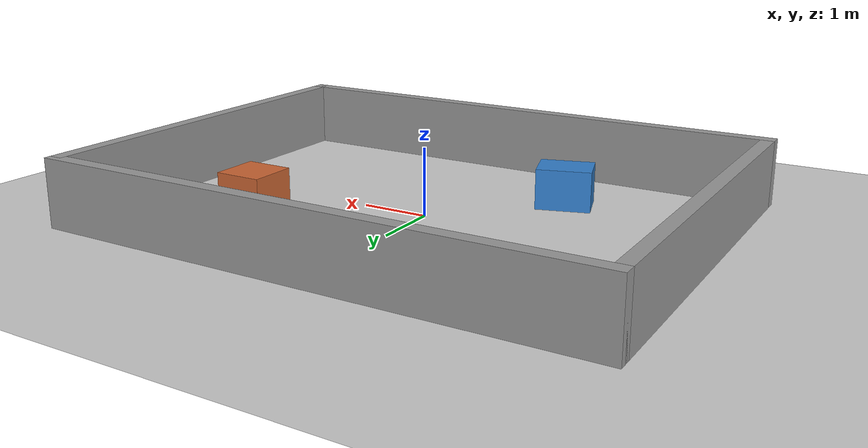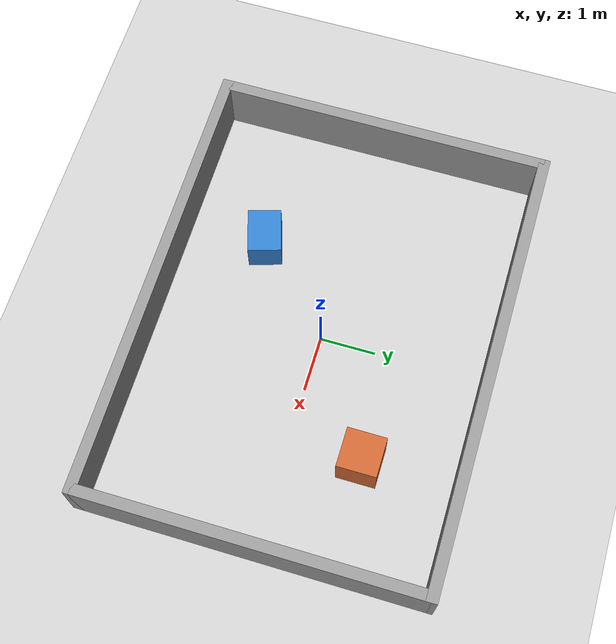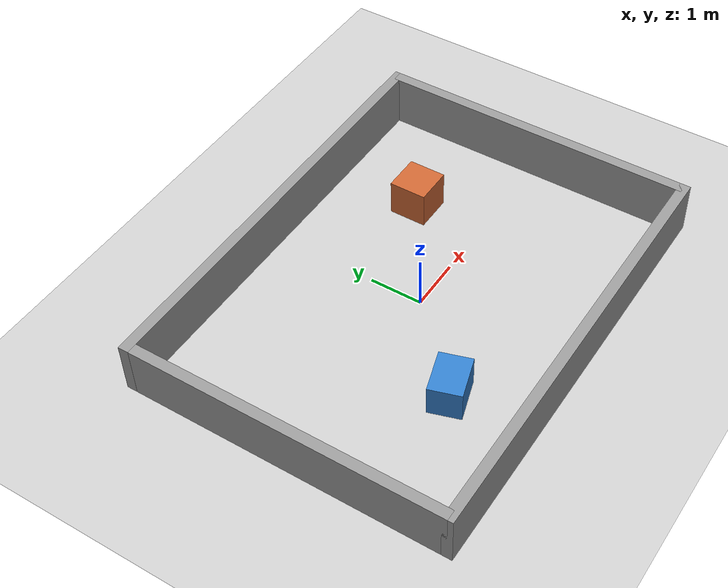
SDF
<?xml version="1.0"?>
<sdf version="1.6">
  <world name="demo_room">
    <include><uri>model://sun</uri></include>
    <include><uri>model://ground_plane</uri></include>
    <physics name="default" type="ode">
      <max_step_size>0.001</max_step_size>
      <real_time_update_rate>1000</real_time_update_rate>
      <ode><solver><type>quick</type><iters>50</iters></solver></ode>
    </physics>
    <scene><ambient>0.7 0.7 0.7 1</ambient><background>0.8 0.85 0.9 1</background></scene>
    <gui><camera name="user_camera"><pose>6 -7 6 0 0.55 2.25</pose></camera></gui>
    <model name="room_walls">
      <static>true</static>
      <link name="north"><pose>0 3 0.5 0 0 0</pose>
        <collision name="collision"><geometry><box><size>8.2 0.2 1</size></box></geometry></collision>
        <visual name="visual"><geometry><box><size>8.2 0.2 1</size></box></geometry><material><ambient>0.6 0.6 0.6 1</ambient></material></visual>
      </link>
      <link name="south"><pose>0 -3 0.5 0 0 0</pose>
        <collision name="collision"><geometry><box><size>8.2 0.2 1</size></box></geometry></collision>
        <visual name="visual"><geometry><box><size>8.2 0.2 1</size></box></geometry><material><ambient>0.6 0.6 0.6 1</ambient></material></visual>
      </link>
      <link name="east"><pose>4 0 0.5 0 0 0</pose>
        <collision name="collision"><geometry><box><size>0.2 6 1</size></box></geometry></collision>
        <visual name="visual"><geometry><box><size>0.2 6 1</size></box></geometry><material><ambient>0.6 0.6 0.6 1</ambient></material></visual>
      </link>
      <link name="west"><pose>-4 0 0.5 0 0 0</pose>
        <collision name="collision"><geometry><box><size>0.2 6 1</size></box></geometry></collision>
        <visual name="visual"><geometry><box><size>0.2 6 1</size></box></geometry><material><ambient>0.6 0.6 0.6 1</ambient></material></visual>
      </link>
    </model>
    <model name="box_a"><static>true</static><pose>2 1.3 0.35 0 0 0</pose><link name="box">
      <collision name="collision"><geometry><box><size>0.7 0.7 0.7</size></box></geometry></collision>
      <visual name="visual"><geometry><box><size>0.7 0.7 0.7</size></box></geometry><material><ambient>0.8 0.4 0.2 1</ambient></material></visual>
    </link></model>
    <model name="box_b"><static>true</static><pose>-1.5 -1.5 0.3 0 0 0.3</pose><link name="box">
      <collision name="collision"><geometry><box><size>0.8 0.6 0.6</size></box></geometry></collision>
      <visual name="visual"><geometry><box><size>0.8 0.6 0.6</size></box></geometry><material><ambient>0.2 0.5 0.8 1</ambient></material></visual>
    </link></model>
  </world>
</sdf>
